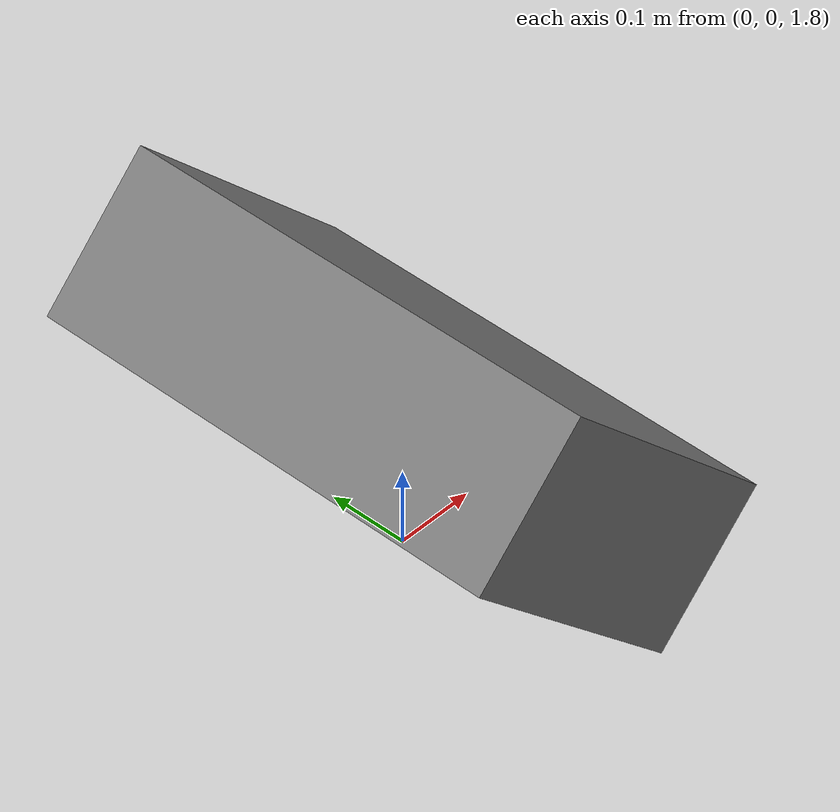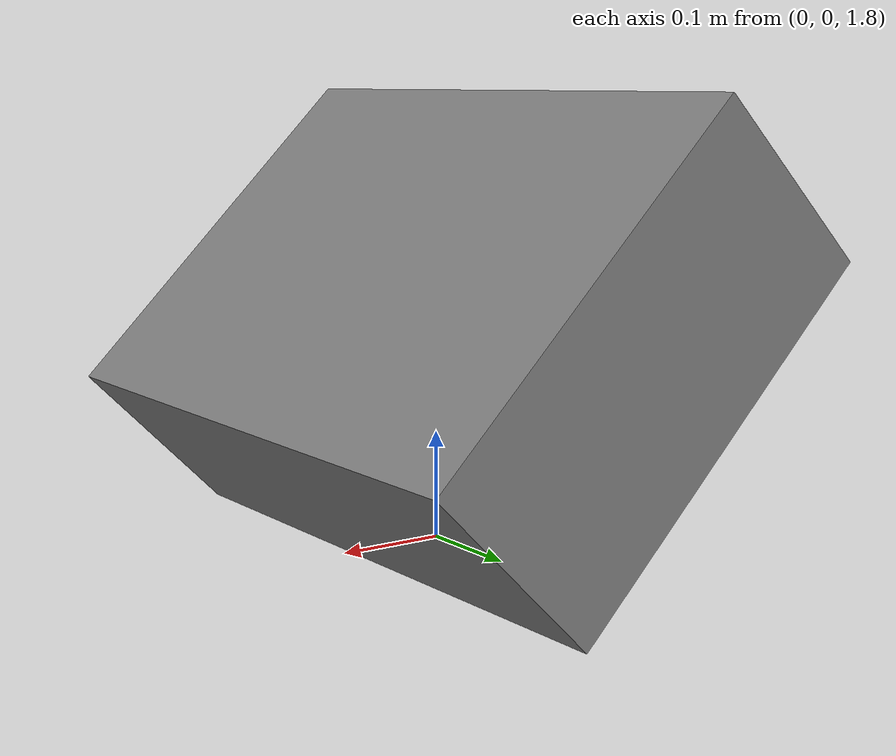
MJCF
<mujoco model="fluid-box">
  <custom>
    <numeric data="20" name="matrix_inv_iterations"/>
    <numeric data="15" name="solver_maxls"/>
  </custom>
  <option timestep="0.001" density="1.2" viscosity="0.15" gravity="0 0 0"/>
  <worldbody>
    <!-- offset the body pos/rot for testing -->
    <body name="body1" pos="0.0 0.0 2.0" euler="0 45 0">
      <joint axis="1 0 0" name="free3" pos="0 0 0" type="free"/>
      <geom name="box1" size="0.2 0.3 0.1" mass="1" type="box"/>
    </body>
  </worldbody>
</mujoco>
